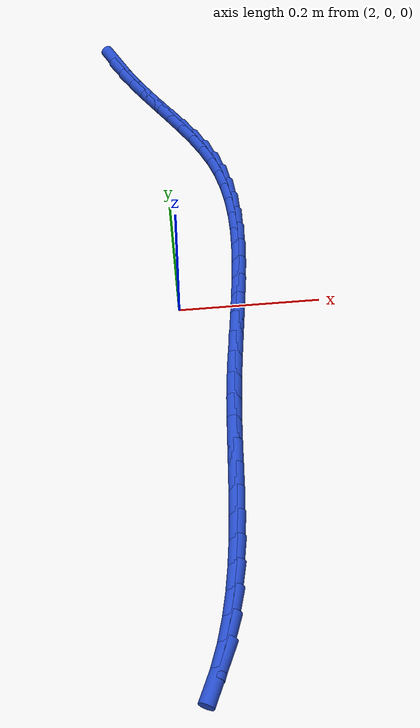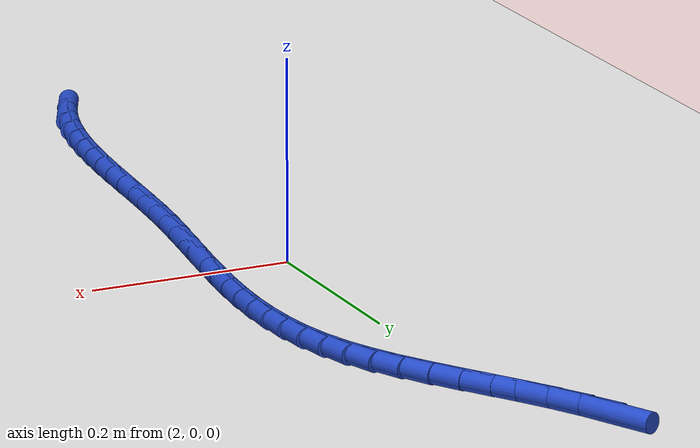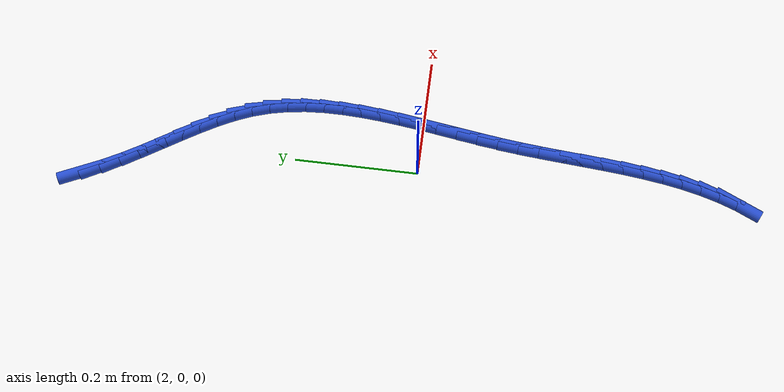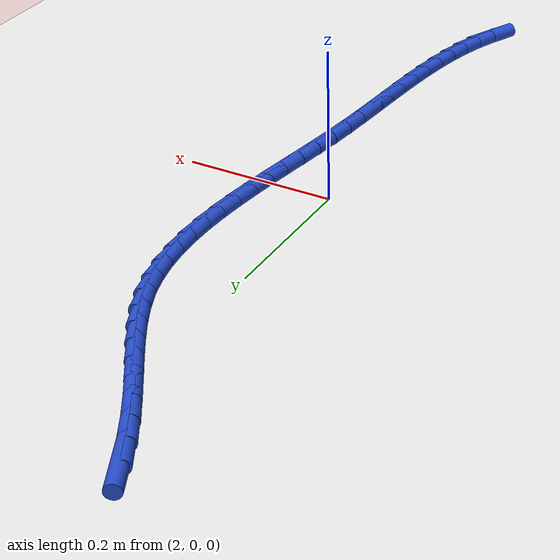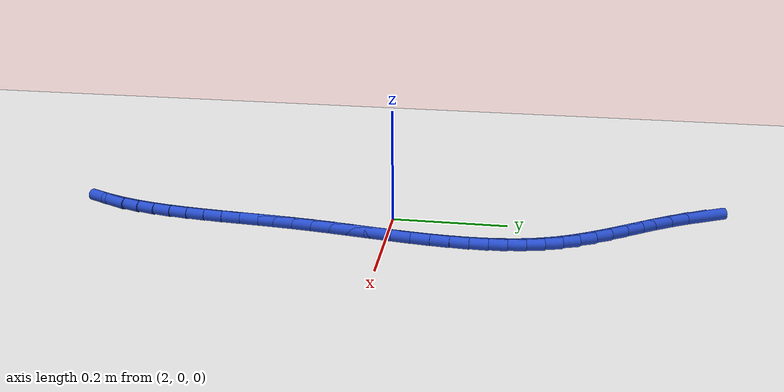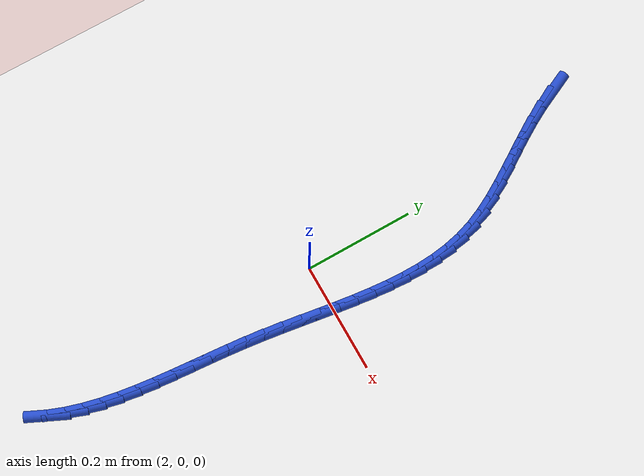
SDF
<sdf version="1.6">
 <world name="default">
  <model name="ground_plane">
   <static>1</static>
   <link name="link">
    <collision name="collision">
     <geometry><plane><normal>0 0 1</normal><size>100 100</size></plane></geometry>
     <surface><friction><ode><mu>100</mu><mu2>50</mu2></ode></friction></surface>
    </collision>
    <visual name="visual">
     <cast_shadows>0</cast_shadows>
     <geometry><plane><normal>0 0 1</normal><size>100 100</size></plane></geometry>
     <material>
      <script><uri>file://media/materials/scripts/gazebo.material</uri><name>Gazebo/WhiteGlow</name></script>
     </material>
    </visual>
   </link>
  </model>
  <model name="line">
   <link name="link_88">
    <pose>1.9336445499677832 0.5360110383814258 0.01 0 1.57 -1.1302857701732456</pose>
    <collision name="collision">
     <geometry><cylinder><radius>0.01</radius><length>0.08</length></cylinder></geometry>
    </collision>
    <visual name="visual">
     <material>
      <script><name>Gazebo/Blue</name><uri>file://media/materials/scripts/gazebo.material</uri></script>
     </material>
     <geometry><cylinder><radius>0.01</radius><length>0.08</length></cylinder></geometry>
    </visual>
   </link>
   <link name="link_89">
    <pose>1.9483031106873607 0.5049155267428569 0.01 0 1.57 -1.0721602643925197</pose>
    <collision name="collision">
     <geometry><cylinder><radius>0.01</radius><length>0.08</length></cylinder></geometry>
    </collision>
    <visual name="visual">
     <material>
      <script><name>Gazebo/Blue</name><uri>file://media/materials/scripts/gazebo.material</uri></script>
     </material>
     <geometry><cylinder><radius>0.01</radius><length>0.08</length></cylinder></geometry>
    </visual>
   </link>
   <link name="link_90">
    <pose>1.9644628609901937 0.4752391691748766 0.01 0 1.57 -1.0300450297470933</pose>
    <collision name="collision">
     <geometry><cylinder><radius>0.01</radius><length>0.08</length></cylinder></geometry>
    </collision>
    <visual name="visual">
     <material>
      <script><name>Gazebo/Blue</name><uri>file://media/materials/scripts/gazebo.material</uri></script>
     </material>
     <geometry><cylinder><radius>0.01</radius><length>0.08</length></cylinder></geometry>
    </visual>
   </link>
   <link name="link_91">
    <pose>1.9815952419973895 0.4467066636214566 0.01 0 1.57 -1.0050455775173879</pose>
    <collision name="collision">
     <geometry><cylinder><radius>0.01</radius><length>0.08</length></cylinder></geometry>
    </collision>
    <visual name="visual">
     <material>
      <script><name>Gazebo/Blue</name><uri>file://media/materials/scripts/gazebo.material</uri></script>
     </material>
     <geometry><cylinder><radius>0.01</radius><length>0.08</length></cylinder></geometry>
    </visual>
   </link>
   <link name="link_92">
    <pose>1.9991650903770979 0.4190371658992756 0.01 0 1.57 -0.9979226503031484</pose>
    <collision name="collision">
     <geometry><cylinder><radius>0.01</radius><length>0.08</length></cylinder></geometry>
    </collision>
    <visual name="visual">
     <material>
      <script><name>Gazebo/Blue</name><uri>file://media/materials/scripts/gazebo.material</uri></script>
     </material>
     <geometry><cylinder><radius>0.01</radius><length>0.08</length></cylinder></geometry>
    </visual>
   </link>
   <link name="link_93">
    <pose>2.0166372427974713 0.391949831825013 0.01 0 1.57 -1.0095695049526292</pose>
    <collision name="collision">
     <geometry><cylinder><radius>0.01</radius><length>0.08</length></cylinder></geometry>
    </collision>
    <visual name="visual">
     <material>
      <script><name>Gazebo/Blue</name><uri>file://media/materials/scripts/gazebo.material</uri></script>
     </material>
     <geometry><cylinder><radius>0.01</radius><length>0.08</length></cylinder></geometry>
    </visual>
   </link>
   <link name="link_94">
    <pose>2.0334765359266576 0.36516381721534696 0.01 0 1.57 -1.041105508390965</pose>
    <collision name="collision">
     <geometry><cylinder><radius>0.01</radius><length>0.08</length></cylinder></geometry>
    </collision>
    <visual name="visual">
     <material>
      <script><name>Gazebo/Blue</name><uri>file://media/materials/scripts/gazebo.material</uri></script>
     </material>
     <geometry><cylinder><radius>0.01</radius><length>0.08</length></cylinder></geometry>
    </visual>
   </link>
   <link name="link_95">
    <pose>2.0491478064328095 0.3383982778869563 0.01 0 1.57 -1.0937672437504518</pose>
    <collision name="collision">
     <geometry><cylinder><radius>0.01</radius><length>0.08</length></cylinder></geometry>
    </collision>
    <visual name="visual">
     <material>
      <script><name>Gazebo/Blue</name><uri>file://media/materials/scripts/gazebo.material</uri></script>
     </material>
     <geometry><cylinder><radius>0.01</radius><length>0.08</length></cylinder></geometry>
    </visual>
   </link>
   <link name="link_96">
    <pose>2.0631158909840766 0.31137236965652026 0.01 0 1.57 -1.1685045502220708</pose>
    <collision name="collision">
     <geometry><cylinder><radius>0.01</radius><length>0.08</length></cylinder></geometry>
    </collision>
    <visual name="visual">
     <material>
      <script><name>Gazebo/Blue</name><uri>file://media/materials/scripts/gazebo.material</uri></script>
     </material>
     <geometry><cylinder><radius>0.01</radius><length>0.08</length></cylinder></geometry>
    </visual>
   </link>
   <link name="link_97">
    <pose>2.0748456262486097 0.2838052483407173 0.01 0 1.57 -1.2624765797729067</pose>
    <collision name="collision">
     <geometry><cylinder><radius>0.01</radius><length>0.08</length></cylinder></geometry>
    </collision>
    <visual name="visual">
     <material>
      <script><name>Gazebo/Blue</name><uri>file://media/materials/scripts/gazebo.material</uri></script>
     </material>
     <geometry><cylinder><radius>0.01</radius><length>0.08</length></cylinder></geometry>
    </visual>
   </link>
   <link name="link_98">
    <pose>2.083876671234208 0.2554481676941861 0.01 0 1.57 -1.355247311664079</pose>
    <collision name="collision">
     <geometry><cylinder><radius>0.01</radius><length>0.08</length></cylinder></geometry>
    </collision>
    <visual name="visual">
     <material>
      <script><name>Gazebo/Blue</name><uri>file://media/materials/scripts/gazebo.material</uri></script>
     </material>
     <geometry><cylinder><radius>0.01</radius><length>0.08</length></cylinder></geometry>
    </visual>
   </link>
   <link name="link_99">
    <pose>2.090264448434018 0.2262736381768829 0.01 0 1.57 -1.4373540266387814</pose>
    <collision name="collision">
     <geometry><cylinder><radius>0.01</radius><length>0.08</length></cylinder></geometry>
    </collision>
    <visual name="visual">
     <material>
      <script><name>Gazebo/Blue</name><uri>file://media/materials/scripts/gazebo.material</uri></script>
     </material>
     <geometry><cylinder><radius>0.01</radius><length>0.08</length></cylinder></geometry>
    </visual>
   </link>
   <link name="link_100">
    <pose>2.0942817456433493 0.19634741750641654 0.01 0 1.57 -1.5081455812263116</pose>
    <collision name="collision">
     <geometry><cylinder><radius>0.01</radius><length>0.08</length></cylinder></geometry>
    </collision>
    <visual name="visual">
     <material>
      <script><name>Gazebo/Blue</name><uri>file://media/materials/scripts/gazebo.material</uri></script>
     </material>
     <geometry><cylinder><radius>0.01</radius><length>0.08</length></cylinder></geometry>
    </visual>
   </link>
   <link name="link_101">
    <pose>2.096202112653878 0.1657355902882238 0.01 0 1.57 -1.567690912067675</pose>
    <collision name="collision">
     <geometry><cylinder><radius>0.01</radius><length>0.08</length></cylinder></geometry>
    </collision>
    <visual name="visual">
     <material>
      <script><name>Gazebo/Blue</name><uri>file://media/materials/scripts/gazebo.material</uri></script>
     </material>
     <geometry><cylinder><radius>0.01</radius><length>0.08</length></cylinder></geometry>
    </visual>
   </link>
   <link name="link_102">
    <pose>2.096299099257279 0.1345042411277429 0.01 0 1.57 1.5251193337158413</pose>
    <collision name="collision">
     <geometry><cylinder><radius>0.01</radius><length>0.08</length></cylinder></geometry>
    </collision>
    <visual name="visual">
     <material>
      <script><name>Gazebo/Blue</name><uri>file://media/materials/scripts/gazebo.material</uri></script>
     </material>
     <geometry><cylinder><radius>0.01</radius><length>0.08</length></cylinder></geometry>
    </visual>
   </link>
   <link name="link_103">
    <pose>2.0948462552452303 0.10271945463041103 0.01 0 1.57 1.4864310822576539</pose>
    <collision name="collision">
     <geometry><cylinder><radius>0.01</radius><length>0.08</length></cylinder></geometry>
    </collision>
    <visual name="visual">
     <material>
      <script><name>Gazebo/Blue</name><uri>file://media/materials/scripts/gazebo.material</uri></script>
     </material>
     <geometry><cylinder><radius>0.01</radius><length>0.08</length></cylinder></geometry>
    </visual>
   </link>
   <link name="link_104">
    <pose>2.0921171304094055 0.0704473154016655 0.01 0 1.57 1.4571412024107437</pose>
    <collision name="collision">
     <geometry><cylinder><radius>0.01</radius><length>0.08</length></cylinder></geometry>
    </collision>
    <visual name="visual">
     <material>
      <script><name>Gazebo/Blue</name><uri>file://media/materials/scripts/gazebo.material</uri></script>
     </material>
     <geometry><cylinder><radius>0.01</radius><length>0.08</length></cylinder></geometry>
    </visual>
   </link>
   <link name="link_105">
    <pose>2.0883852745414813 0.0377539080469439 0.01 0 1.57 1.436623130697134</pose>
    <collision name="collision">
     <geometry><cylinder><radius>0.01</radius><length>0.08</length></cylinder></geometry>
    </collision>
    <visual name="visual">
     <material>
      <script><name>Gazebo/Blue</name><uri>file://media/materials/scripts/gazebo.material</uri></script>
     </material>
     <geometry><cylinder><radius>0.01</radius><length>0.08</length></cylinder></geometry>
    </visual>
   </link>
   <link name="link_106">
    <pose>2.0839242374331355 0.004705317171682859 0.01 0 1.57 1.4243710680460435</pose>
    <collision name="collision">
     <geometry><cylinder><radius>0.01</radius><length>0.08</length></cylinder></geometry>
    </collision>
    <visual name="visual">
     <material>
      <script><name>Gazebo/Blue</name><uri>file://media/materials/scripts/gazebo.material</uri></script>
     </material>
     <geometry><cylinder><radius>0.01</radius><length>0.08</length></cylinder></geometry>
    </visual>
   </link>
   <link name="link_107">
    <pose>2.0790075688760417 -0.028632372618678688 0.01 0 1.57 1.420023100240832</pose>
    <collision name="collision">
     <geometry><cylinder><radius>0.01</radius><length>0.08</length></cylinder></geometry>
    </collision>
    <visual name="visual">
     <material>
      <script><name>Gazebo/Blue</name><uri>file://media/materials/scripts/gazebo.material</uri></script>
     </material>
     <geometry><cylinder><radius>0.01</radius><length>0.08</length></cylinder></geometry>
    </visual>
   </link>
   <link name="link_108">
    <pose>2.0739088186618773 -0.062193076718704 0.01 0 1.57 1.423367499479504</pose>
    <collision name="collision">
     <geometry><cylinder><radius>0.01</radius><length>0.08</length></cylinder></geometry>
    </collision>
    <visual name="visual">
     <material>
      <script><name>Gazebo/Blue</name><uri>file://media/materials/scripts/gazebo.material</uri></script>
     </material>
     <geometry><cylinder><radius>0.01</radius><length>0.08</length></cylinder></geometry>
    </visual>
   </link>
   <link name="link_109">
    <pose>2.0689015365823193 -0.0959107105229556 0.01 0 1.57 1.4343390073322952</pose>
    <collision name="collision">
     <geometry><cylinder><radius>0.01</radius><length>0.08</length></cylinder></geometry>
    </collision>
    <visual name="visual">
     <material>
      <script><name>Gazebo/Blue</name><uri>file://media/materials/scripts/gazebo.material</uri></script>
     </material>
     <geometry><cylinder><radius>0.01</radius><length>0.08</length></cylinder></geometry>
    </visual>
   </link>
   <link name="link_110">
    <pose>2.064259272429042 -0.12971918942599614 0.01 0 1.57 1.45286953223892</pose>
    <collision name="collision">
     <geometry><cylinder><radius>0.01</radius><length>0.08</length></cylinder></geometry>
    </collision>
    <visual name="visual">
     <material>
      <script><name>Gazebo/Blue</name><uri>file://media/materials/scripts/gazebo.material</uri></script>
     </material>
     <geometry><cylinder><radius>0.01</radius><length>0.08</length></cylinder></geometry>
    </visual>
   </link>
   <link name="link_111">
    <pose>2.0602508483165964 -0.16355225952494912 0.01 0 1.57 1.4728388241207218</pose>
    <collision name="collision">
     <geometry><cylinder><radius>0.01</radius><length>0.08</length></cylinder></geometry>
    </collision>
    <visual name="visual">
     <material>
      <script><name>Gazebo/Blue</name><uri>file://media/materials/scripts/gazebo.material</uri></script>
     </material>
     <geometry><cylinder><radius>0.01</radius><length>0.08</length></cylinder></geometry>
    </visual>
   </link>
   <link name="link_112">
    <pose>2.0569308519390166 -0.19733599521310893 0.01 0 1.57 1.4855852672893437</pose>
    <collision name="collision">
     <geometry><cylinder><radius>0.01</radius><length>0.08</length></cylinder></geometry>
    </collision>
    <visual name="visual">
     <material>
      <script><name>Gazebo/Blue</name><uri>file://media/materials/scripts/gazebo.material</uri></script>
     </material>
     <geometry><cylinder><radius>0.01</radius><length>0.08</length></cylinder></geometry>
    </visual>
   </link>
   <link name="link_113">
    <pose>2.0540565543185485 -0.2309858240164514 0.01 0 1.57 1.4904079318704284</pose>
    <collision name="collision">
     <geometry><cylinder><radius>0.01</radius><length>0.08</length></cylinder></geometry>
    </collision>
    <visual name="visual">
     <material>
      <script><name>Gazebo/Blue</name><uri>file://media/materials/scripts/gazebo.material</uri></script>
     </material>
     <geometry><cylinder><radius>0.01</radius><length>0.08</length></cylinder></geometry>
    </visual>
   </link>
   <link name="link_114">
    <pose>2.051363320866398 -0.2644163890241696 0.01 0 1.57 1.4871661916958354</pose>
    <collision name="collision">
     <geometry><cylinder><radius>0.01</radius><length>0.08</length></cylinder></geometry>
    </collision>
    <visual name="visual">
     <material>
      <script><name>Gazebo/Blue</name><uri>file://media/materials/scripts/gazebo.material</uri></script>
     </material>
     <geometry><cylinder><radius>0.01</radius><length>0.08</length></cylinder></geometry>
    </visual>
   </link>
   <link name="link_115">
    <pose>2.048586516993774 -0.29754233332545604 0.01 0 1.57 1.4756237007833684</pose>
    <collision name="collision">
     <geometry><cylinder><radius>0.01</radius><length>0.08</length></cylinder></geometry>
    </collision>
    <visual name="visual">
     <material>
      <script><name>Gazebo/Blue</name><uri>file://media/materials/scripts/gazebo.material</uri></script>
     </material>
     <geometry><cylinder><radius>0.01</radius><length>0.08</length></cylinder></geometry>
    </visual>
   </link>
   <link name="link_116">
    <pose>2.0454615081118837 -0.3302783000095029 0.01 0 1.57 1.4554465817064046</pose>
    <collision name="collision">
     <geometry><cylinder><radius>0.01</radius><length>0.08</length></cylinder></geometry>
    </collision>
    <visual name="visual">
     <material>
      <script><name>Gazebo/Blue</name><uri>file://media/materials/scripts/gazebo.material</uri></script>
     </material>
     <geometry><cylinder><radius>0.01</radius><length>0.08</length></cylinder></geometry>
    </visual>
   </link>
   <link name="link_117">
    <pose>2.0417236596319333 -0.3625389321655025 0.01 0 1.57 1.4262181396266804</pose>
    <collision name="collision">
     <geometry><cylinder><radius>0.01</radius><length>0.08</length></cylinder></geometry>
    </collision>
    <visual name="visual">
     <material>
      <script><name>Gazebo/Blue</name><uri>file://media/materials/scripts/gazebo.material</uri></script>
     </material>
     <geometry><cylinder><radius>0.01</radius><length>0.08</length></cylinder></geometry>
    </visual>
   </link>
   <link name="link_118">
    <pose>2.037108336965131 -0.39423887288264703 0.01 0 1.57 1.3874765862404939</pose>
    <collision name="collision">
     <geometry><cylinder><radius>0.01</radius><length>0.08</length></cylinder></geometry>
    </collision>
    <visual name="visual">
     <material>
      <script><name>Gazebo/Blue</name><uri>file://media/materials/scripts/gazebo.material</uri></script>
     </material>
     <geometry><cylinder><radius>0.01</radius><length>0.08</length></cylinder></geometry>
    </visual>
   </link>
   <link name="link_119">
    <pose>2.0313509055226846 -0.4252927652501298 0.01 0 1.57 1.3387848964010884</pose>
    <collision name="collision">
     <geometry><cylinder><radius>0.01</radius><length>0.08</length></cylinder></geometry>
    </collision>
    <visual name="visual">
     <material>
      <script><name>Gazebo/Blue</name><uri>file://media/materials/scripts/gazebo.material</uri></script>
     </material>
     <geometry><cylinder><radius>0.01</radius><length>0.08</length></cylinder></geometry>
    </visual>
   </link>
   <link name="link_120">
    <pose>2.0241867307158015 -0.4556152523571417 0.01 0 1.57 1.2798422230376436</pose>
    <collision name="collision">
     <geometry><cylinder><radius>0.01</radius><length>0.08</length></cylinder></geometry>
    </collision>
    <visual name="visual">
     <material>
      <script><name>Gazebo/Blue</name><uri>file://media/materials/scripts/gazebo.material</uri></script>
     </material>
     <geometry><cylinder><radius>0.01</radius><length>0.08</length></cylinder></geometry>
    </visual>
   </link>
   <link name="link_121">
    <pose>2.0153511779556883 -0.4851209772928755 0.01 0 1.57 1.2106405768051407</pose>
    <collision name="collision">
     <geometry><cylinder><radius>0.01</radius><length>0.08</length></cylinder></geometry>
    </collision>
    <visual name="visual">
     <material>
      <script><name>Gazebo/Blue</name><uri>file://media/materials/scripts/gazebo.material</uri></script>
     </material>
     <geometry><cylinder><radius>0.01</radius><length>0.08</length></cylinder></geometry>
    </visual>
   </link>
   <link name="link_122">
    <pose>2.0045796126535524 -0.5137245831465236 0.01 0 1.57 1.131654007607248</pose>
    <collision name="collision">
     <geometry><cylinder><radius>0.01</radius><length>0.08</length></cylinder></geometry>
    </collision>
    <visual name="visual">
     <material>
      <script><name>Gazebo/Blue</name><uri>file://media/materials/scripts/gazebo.material</uri></script>
     </material>
     <geometry><cylinder><radius>0.01</radius><length>0.08</length></cylinder></geometry>
    </visual>
   </link>
  </model>
 </world>
</sdf>
